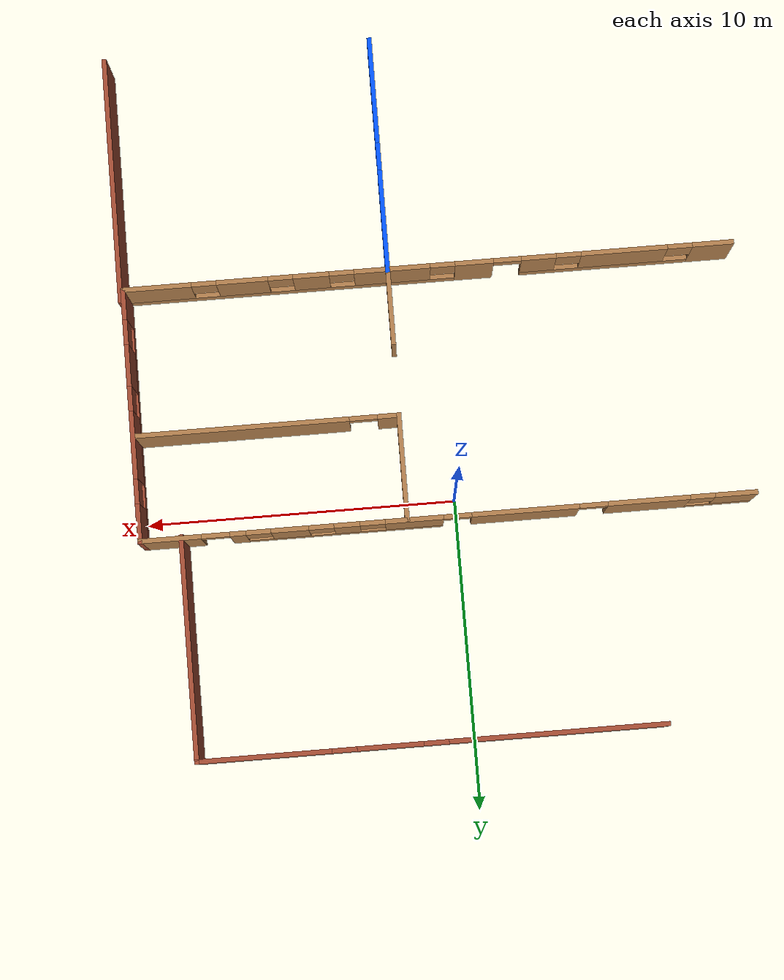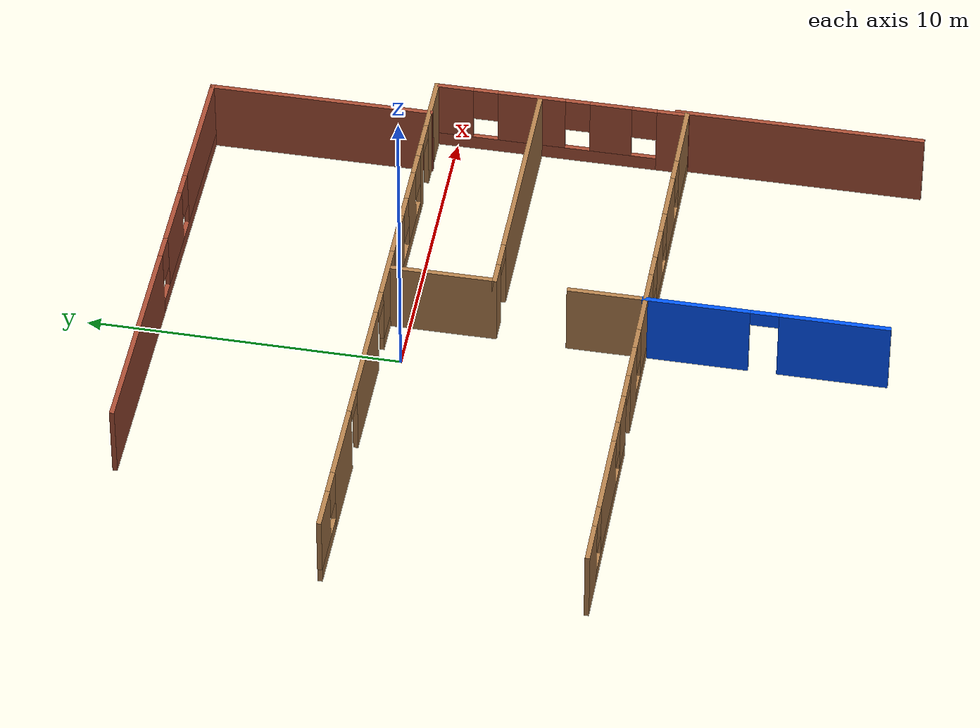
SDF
<sdf version="1.6">
 <model name="Building">
  <pose>-2.11328 -3.59888 0 0 -0 0</pose>
  <link name="Wall_19">
   <collision name="Wall_19_Collision">
    <geometry><box><size>3.5 0.15 2.5</size></box></geometry>
    <pose>0 0 1.25 0 -0 0</pose>
   </collision>
   <visual name="Wall_19_Visual">
    <pose>0 0 1.25 0 -0 0</pose>
    <geometry><box><size>3.5 0.15 2.5</size></box></geometry>
    <material>
     <script><uri>file://media/materials/scripts/gazebo.material</uri><name>Gazebo/Wood</name></script>
     <ambient>1 1 1 1</ambient>
    </material>
    <meta><layer>0</layer></meta>
   </visual>
   <pose>3.70447 2.60682 0 0 0 -1.5708</pose>
  </link>
  <link name="Wall_20">
   <pose>7.87947 0.931819 0 0 -0 0</pose>
   <visual name="Wall_20_Visual_0">
    <pose>-3.86745 0 1.25 0 -0 0</pose>
    <geometry><box><size>0.765092 0.15 2.5</size></box></geometry>
    <material>
     <script><uri>file://media/materials/scripts/gazebo.material</uri><name>Gazebo/Wood</name></script>
     <ambient>1 1 1 1</ambient>
    </material>
    <meta><layer>0</layer></meta>
   </visual>
   <collision name="Wall_20_Collision_0">
    <geometry><box><size>0.765092 0.15 2.5</size></box></geometry>
    <pose>-3.86745 0 1.25 0 -0 0</pose>
   </collision>
   <visual name="Wall_20_Visual_1">
    <pose>0.832546 0 1.25 0 -0 0</pose>
    <geometry><box><size>6.83491 0.15 2.5</size></box></geometry>
    <material>
     <script><uri>file://media/materials/scripts/gazebo.material</uri><name>Gazebo/Wood</name></script>
     <ambient>1 1 1 1</ambient>
    </material>
    <meta><layer>0</layer></meta>
   </visual>
   <collision name="Wall_20_Collision_1">
    <geometry><box><size>6.83491 0.15 2.5</size></box></geometry>
    <pose>0.832546 0 1.25 0 -0 0</pose>
   </collision>
   <visual name="Wall_20_Visual_2">
    <pose>-3.03491 0 2.25 0 -0 0</pose>
    <geometry><box><size>0.9 0.15 0.5</size></box></geometry>
    <material>
     <script><uri>file://media/materials/scripts/gazebo.material</uri><name>Gazebo/Wood</name></script>
     <ambient>1 1 1 1</ambient>
    </material>
    <meta><layer>0</layer></meta>
   </visual>
   <collision name="Wall_20_Collision_2">
    <geometry><box><size>0.9 0.15 0.5</size></box></geometry>
    <pose>-3.03491 0 2.25 0 -0 0</pose>
   </collision>
  </link>
  <link name="Wall_22">
   <collision name="Wall_22_Collision">
    <geometry><box><size>2.5 0.15 2.5</size></box></geometry>
    <pose>0 0 1.25 0 -0 0</pose>
   </collision>
   <visual name="Wall_22_Visual">
    <pose>0 0 1.25 0 -0 0</pose>
    <geometry><box><size>2.5 0.15 2.5</size></box></geometry>
    <material>
     <script><uri>file://media/materials/scripts/gazebo.material</uri><name>Gazebo/Wood</name></script>
     <ambient>1 1 1 1</ambient>
    </material>
    <meta><layer>0</layer></meta>
   </visual>
   <pose>3.68886 -2.58973 0 0 -0 1.5708</pose>
  </link>
  <link name="Wall_25">
   <pose>3.475 11.3647 0 0 -0 0</pose>
   <visual name="Wall_25_Visual_0">
    <pose>-4.00983 0 1.25 0 -0 0</pose>
    <geometry><box><size>6.98034 0.15 2.5</size></box></geometry>
    <material>
     <script><uri>file://media/materials/scripts/gazebo.material</uri><name>Gazebo/Bricks</name></script>
     <ambient>0 0.333333 1 1</ambient>
    </material>
    <meta><layer>0</layer></meta>
   </visual>
   <collision name="Wall_25_Collision_0">
    <geometry><box><size>6.98034 0.15 2.5</size></box></geometry>
    <pose>-4.00983 0 1.25 0 -0 0</pose>
   </collision>
   <visual name="Wall_25_Visual_1">
    <pose>3.49017 0 0.25 0 -0 0</pose>
    <geometry><box><size>8.01966 0.15 0.5</size></box></geometry>
    <material>
     <script><uri>file://media/materials/scripts/gazebo.material</uri><name>Gazebo/Bricks</name></script>
     <ambient>0 0.333333 1 1</ambient>
    </material>
    <meta><layer>0</layer></meta>
   </visual>
   <collision name="Wall_25_Collision_1">
    <geometry><box><size>8.01966 0.15 0.5</size></box></geometry>
    <pose>3.49017 0 0.25 0 -0 0</pose>
   </collision>
   <visual name="Wall_25_Visual_2">
    <pose>1.32873 0 1.5 0 -0 0</pose>
    <geometry><box><size>2.09676 0.15 2</size></box></geometry>
    <material>
     <script><uri>file://media/materials/scripts/gazebo.material</uri><name>Gazebo/Bricks</name></script>
     <ambient>0 0.333333 1 1</ambient>
    </material>
    <meta><layer>0</layer></meta>
   </visual>
   <collision name="Wall_25_Collision_2">
    <geometry><box><size>2.09676 0.15 2</size></box></geometry>
    <pose>1.32873 0 1.5 0 -0 0</pose>
   </collision>
   <visual name="Wall_25_Visual_3">
    <pose>5.33856 0 1.5 0 -0 0</pose>
    <geometry><box><size>4.32289 0.15 2</size></box></geometry>
    <material>
     <script><uri>file://media/materials/scripts/gazebo.material</uri><name>Gazebo/Bricks</name></script>
     <ambient>0 0.333333 1 1</ambient>
    </material>
    <meta><layer>0</layer></meta>
   </visual>
   <collision name="Wall_25_Collision_3">
    <geometry><box><size>4.32289 0.15 2</size></box></geometry>
    <pose>5.33856 0 1.5 0 -0 0</pose>
   </collision>
   <visual name="Wall_25_Visual_4">
    <pose>-0.119655 0 1.9 0 -0 0</pose>
    <geometry><box><size>0.8 0.15 1.2</size></box></geometry>
    <material>
     <script><uri>file://media/materials/scripts/gazebo.material</uri><name>Gazebo/Bricks</name></script>
     <ambient>0 0.333333 1 1</ambient>
    </material>
    <meta><layer>0</layer></meta>
   </visual>
   <collision name="Wall_25_Collision_4">
    <geometry><box><size>0.8 0.15 1.2</size></box></geometry>
    <pose>-0.119655 0 1.9 0 -0 0</pose>
   </collision>
   <visual name="Wall_25_Visual_5">
    <pose>2.77711 0 1.9 0 -0 0</pose>
    <geometry><box><size>0.8 0.15 1.2</size></box></geometry>
    <material>
     <script><uri>file://media/materials/scripts/gazebo.material</uri><name>Gazebo/Bricks</name></script>
     <ambient>0 0.333333 1 1</ambient>
    </material>
    <meta><layer>0</layer></meta>
   </visual>
   <collision name="Wall_25_Collision_5">
    <geometry><box><size>0.8 0.15 1.2</size></box></geometry>
    <pose>2.77711 0 1.9 0 -0 0</pose>
   </collision>
  </link>
  <link name="Wall_30">
   <collision name="Wall_30_Collision">
    <geometry><box><size>7.25 0.15 2.5</size></box></geometry>
    <pose>0 0 1.25 0 -0 0</pose>
   </collision>
   <visual name="Wall_30_Visual">
    <pose>0 0 1.25 0 -0 0</pose>
    <geometry><box><size>7.25 0.15 2.5</size></box></geometry>
    <material>
     <script><uri>file://media/materials/scripts/gazebo.material</uri><name>Gazebo/Bricks</name></script>
     <ambient>0 0.333333 1 1</ambient>
    </material>
    <meta><layer>0</layer></meta>
   </visual>
   <pose>10.9 7.81472 0 0 0 -1.5708</pose>
  </link>
  <link name="Wall_43">
   <collision name="Wall_43_Collision">
    <geometry><box><size>8 0.15 2.5</size></box></geometry>
    <pose>0 0 1.25 0 -0 0</pose>
   </collision>
   <visual name="Wall_43_Visual">
    <pose>0 0 1.25 0 -0 0</pose>
    <geometry><box><size>8 0.15 2.5</size></box></geometry>
    <material>
     <script><uri>file://media/materials/scripts/gazebo.material</uri><name>Gazebo/Bricks</name></script>
     <ambient>0 0.333333 1 1</ambient>
    </material>
    <meta><layer>0</layer></meta>
   </visual>
   <pose>12.3 -7.41028 0 0 -0 1.5708</pose>
  </link>
  <link name="Wall_49">
   <pose>3.68886 -7.56473 0 0 0 -1.5708</pose>
   <visual name="Wall_49_Visual_0">
    <pose>-2.18717 0 1.25 0 -0 0</pose>
    <geometry><box><size>3.37566 0.15 2.5</size></box></geometry>
    <material>
     <script><uri>file://media/materials/scripts/gazebo.material</uri><name>Gazebo/Grey</name></script>
     <ambient>0 0.333333 1 1</ambient>
    </material>
    <meta><layer>0</layer></meta>
   </visual>
   <collision name="Wall_49_Collision_0">
    <geometry><box><size>3.37566 0.15 2.5</size></box></geometry>
    <pose>-2.18717 0 1.25 0 -0 0</pose>
   </collision>
   <visual name="Wall_49_Visual_1">
    <pose>2.13783 0 1.25 0 -0 0</pose>
    <geometry><box><size>3.47434 0.15 2.5</size></box></geometry>
    <material>
     <script><uri>file://media/materials/scripts/gazebo.material</uri><name>Gazebo/Grey</name></script>
     <ambient>0 0.333333 1 1</ambient>
    </material>
    <meta><layer>0</layer></meta>
   </visual>
   <collision name="Wall_49_Collision_1">
    <geometry><box><size>3.47434 0.15 2.5</size></box></geometry>
    <pose>2.13783 0 1.25 0 -0 0</pose>
   </collision>
   <visual name="Wall_49_Visual_2">
    <pose>-0.049336 0 2.25 0 -0 0</pose>
    <geometry><box><size>0.9 0.15 0.5</size></box></geometry>
    <material>
     <script><uri>file://media/materials/scripts/gazebo.material</uri><name>Gazebo/Grey</name></script>
     <ambient>0 0.333333 1 1</ambient>
    </material>
    <meta><layer>0</layer></meta>
   </visual>
   <collision name="Wall_49_Collision_2">
    <geometry><box><size>0.9 0.15 0.5</size></box></geometry>
    <pose>-0.049336 0 2.25 0 -0 0</pose>
   </collision>
  </link>
  <link name="Wall_5">
   <pose>2.40547 -3.80095 0 0 -0 0</pose>
   <visual name="Wall_5_Visual_0">
    <pose>-9.20403 0 1.25 0 -0 0</pose>
    <geometry><box><size>1.34195 0.15 2.5</size></box></geometry>
    <material>
     <script><uri>file://media/materials/scripts/gazebo.material</uri><name>Gazebo/Wood</name></script>
     <ambient>1 1 1 1</ambient>
    </material>
    <meta><layer>0</layer></meta>
   </visual>
   <collision name="Wall_5_Collision_0">
    <geometry><box><size>1.34195 0.15 2.5</size></box></geometry>
    <pose>-9.20403 0 1.25 0 -0 0</pose>
   </collision>
   <visual name="Wall_5_Visual_1">
    <pose>-1.50114 0 1.25 0 -0 0</pose>
    <geometry><box><size>1.23531 0.15 2.5</size></box></geometry>
    <material>
     <script><uri>file://media/materials/scripts/gazebo.material</uri><name>Gazebo/Wood</name></script>
     <ambient>1 1 1 1</ambient>
    </material>
    <meta><layer>0</layer></meta>
   </visual>
   <collision name="Wall_5_Collision_1">
    <geometry><box><size>1.23531 0.15 2.5</size></box></geometry>
    <pose>-1.50114 0 1.25 0 -0 0</pose>
   </collision>
   <visual name="Wall_5_Visual_2">
    <pose>-5.77592 0 0.25 0 -0 0</pose>
    <geometry><box><size>5.51426 0.15 0.5</size></box></geometry>
    <material>
     <script><uri>file://media/materials/scripts/gazebo.material</uri><name>Gazebo/Wood</name></script>
     <ambient>1 1 1 1</ambient>
    </material>
    <meta><layer>0</layer></meta>
   </visual>
   <collision name="Wall_5_Collision_2">
    <geometry><box><size>5.51426 0.15 0.5</size></box></geometry>
    <pose>-5.77592 0 0.25 0 -0 0</pose>
   </collision>
   <visual name="Wall_5_Visual_3">
    <pose>4.49576 0 0.25 0 -0 0</pose>
    <geometry><box><size>10.7585 0.15 0.5</size></box></geometry>
    <material>
     <script><uri>file://media/materials/scripts/gazebo.material</uri><name>Gazebo/Wood</name></script>
     <ambient>1 1 1 1</ambient>
    </material>
    <meta><layer>0</layer></meta>
   </visual>
   <collision name="Wall_5_Collision_3">
    <geometry><box><size>10.7585 0.15 0.5</size></box></geometry>
    <pose>4.49576 0 0.25 0 -0 0</pose>
   </collision>
   <visual name="Wall_5_Visual_4">
    <pose>-6.33869 0 1.5 0 -0 0</pose>
    <geometry><box><size>2.78873 0.15 2</size></box></geometry>
    <material>
     <script><uri>file://media/materials/scripts/gazebo.material</uri><name>Gazebo/Wood</name></script>
     <ambient>1 1 1 1</ambient>
    </material>
    <meta><layer>0</layer></meta>
   </visual>
   <collision name="Wall_5_Collision_4">
    <geometry><box><size>2.78873 0.15 2</size></box></geometry>
    <pose>-6.33869 0 1.5 0 -0 0</pose>
   </collision>
   <visual name="Wall_5_Visual_5">
    <pose>-3.58156 0 1.5 0 -0 0</pose>
    <geometry><box><size>1.12553 0.15 2</size></box></geometry>
    <material>
     <script><uri>file://media/materials/scripts/gazebo.material</uri><name>Gazebo/Wood</name></script>
     <ambient>1 1 1 1</ambient>
    </material>
    <meta><layer>0</layer></meta>
   </visual>
   <collision name="Wall_5_Collision_5">
    <geometry><box><size>1.12553 0.15 2</size></box></geometry>
    <pose>-3.58156 0 1.5 0 -0 0</pose>
   </collision>
   <visual name="Wall_5_Visual_6">
    <pose>-3.58156 0 1.5 0 -0 0</pose>
    <geometry><box><size>1.12553 0.15 2</size></box></geometry>
    <material>
     <script><uri>file://media/materials/scripts/gazebo.material</uri><name>Gazebo/Wood</name></script>
     <ambient>1 1 1 1</ambient>
    </material>
    <meta><layer>0</layer></meta>
   </visual>
   <collision name="Wall_5_Collision_6">
    <geometry><box><size>1.12553 0.15 2</size></box></geometry>
    <pose>-3.58156 0 1.5 0 -0 0</pose>
   </collision>
   <visual name="Wall_5_Visual_7">
    <pose>1.14701 0 1.5 0 -0 0</pose>
    <geometry><box><size>2.46098 0.15 2</size></box></geometry>
    <material>
     <script><uri>file://media/materials/scripts/gazebo.material</uri><name>Gazebo/Wood</name></script>
     <ambient>1 1 1 1</ambient>
    </material>
    <meta><layer>0</layer></meta>
   </visual>
   <collision name="Wall_5_Collision_7">
    <geometry><box><size>2.46098 0.15 2</size></box></geometry>
    <pose>1.14701 0 1.5 0 -0 0</pose>
   </collision>
   <visual name="Wall_5_Visual_8">
    <pose>3.76194 0 1.5 0 -0 0</pose>
    <geometry><box><size>1.16889 0.15 2</size></box></geometry>
    <material>
     <script><uri>file://media/materials/scripts/gazebo.material</uri><name>Gazebo/Wood</name></script>
     <ambient>1 1 1 1</ambient>
    </material>
    <meta><layer>0</layer></meta>
   </visual>
   <collision name="Wall_5_Collision_8">
    <geometry><box><size>1.16889 0.15 2</size></box></geometry>
    <pose>3.76194 0 1.5 0 -0 0</pose>
   </collision>
   <visual name="Wall_5_Visual_9">
    <pose>5.97694 0 1.5 0 -0 0</pose>
    <geometry><box><size>1.66111 0.15 2</size></box></geometry>
    <material>
     <script><uri>file://media/materials/scripts/gazebo.material</uri><name>Gazebo/Wood</name></script>
     <ambient>1 1 1 1</ambient>
    </material>
    <meta><layer>0</layer></meta>
   </visual>
   <collision name="Wall_5_Collision_9">
    <geometry><box><size>1.66111 0.15 2</size></box></geometry>
    <pose>5.97694 0 1.5 0 -0 0</pose>
   </collision>
   <visual name="Wall_5_Visual_10">
    <pose>8.74125 0 1.5 0 -0 0</pose>
    <geometry><box><size>2.2675 0.15 2</size></box></geometry>
    <material>
     <script><uri>file://media/materials/scripts/gazebo.material</uri><name>Gazebo/Wood</name></script>
     <ambient>1 1 1 1</ambient>
    </material>
    <meta><layer>0</layer></meta>
   </visual>
   <collision name="Wall_5_Collision_10">
    <geometry><box><size>2.2675 0.15 2</size></box></geometry>
    <pose>8.74125 0 1.5 0 -0 0</pose>
   </collision>
   <visual name="Wall_5_Visual_11">
    <pose>-8.13305 0 1.9 0 -0 0</pose>
    <geometry><box><size>0.8 0.15 1.2</size></box></geometry>
    <material>
     <script><uri>file://media/materials/scripts/gazebo.material</uri><name>Gazebo/Wood</name></script>
     <ambient>1 1 1 1</ambient>
    </material>
    <meta><layer>0</layer></meta>
   </visual>
   <collision name="Wall_5_Collision_11">
    <geometry><box><size>0.8 0.15 1.2</size></box></geometry>
    <pose>-8.13305 0 1.9 0 -0 0</pose>
   </collision>
   <visual name="Wall_5_Visual_12">
    <pose>-0.483483 0 1.9 0 -0 0</pose>
    <geometry><box><size>0.8 0.15 1.2</size></box></geometry>
    <material>
     <script><uri>file://media/materials/scripts/gazebo.material</uri><name>Gazebo/Wood</name></script>
     <ambient>1 1 1 1</ambient>
    </material>
    <meta><layer>0</layer></meta>
   </visual>
   <collision name="Wall_5_Collision_12">
    <geometry><box><size>0.8 0.15 1.2</size></box></geometry>
    <pose>-0.483483 0 1.9 0 -0 0</pose>
   </collision>
   <visual name="Wall_5_Visual_13">
    <pose>-4.54432 0 1.9 0 -0 0</pose>
    <geometry><box><size>0.8 0.15 1.2</size></box></geometry>
    <material>
     <script><uri>file://media/materials/scripts/gazebo.material</uri><name>Gazebo/Wood</name></script>
     <ambient>1 1 1 1</ambient>
    </material>
    <meta><layer>0</layer></meta>
   </visual>
   <collision name="Wall_5_Collision_13">
    <geometry><box><size>0.8 0.15 1.2</size></box></geometry>
    <pose>-4.54432 0 1.9 0 -0 0</pose>
   </collision>
   <visual name="Wall_5_Visual_14">
    <pose>2.7775 0 1.9 0 -0 0</pose>
    <geometry><box><size>0.8 0.15 1.2</size></box></geometry>
    <material>
     <script><uri>file://media/materials/scripts/gazebo.material</uri><name>Gazebo/Wood</name></script>
     <ambient>1 1 1 1</ambient>
    </material>
    <meta><layer>0</layer></meta>
   </visual>
   <collision name="Wall_5_Collision_14">
    <geometry><box><size>0.8 0.15 1.2</size></box></geometry>
    <pose>2.7775 0 1.9 0 -0 0</pose>
   </collision>
   <visual name="Wall_5_Visual_15">
    <pose>4.74639 0 1.9 0 -0 0</pose>
    <geometry><box><size>0.8 0.15 1.2</size></box></geometry>
    <material>
     <script><uri>file://media/materials/scripts/gazebo.material</uri><name>Gazebo/Wood</name></script>
     <ambient>1 1 1 1</ambient>
    </material>
    <meta><layer>0</layer></meta>
   </visual>
   <collision name="Wall_5_Collision_15">
    <geometry><box><size>0.8 0.15 1.2</size></box></geometry>
    <pose>4.74639 0 1.9 0 -0 0</pose>
   </collision>
   <visual name="Wall_5_Visual_16">
    <pose>7.2075 0 1.9 0 -0 0</pose>
    <geometry><box><size>0.8 0.15 1.2</size></box></geometry>
    <material>
     <script><uri>file://media/materials/scripts/gazebo.material</uri><name>Gazebo/Wood</name></script>
     <ambient>1 1 1 1</ambient>
    </material>
    <meta><layer>0</layer></meta>
   </visual>
   <collision name="Wall_5_Collision_16">
    <geometry><box><size>0.8 0.15 1.2</size></box></geometry>
    <pose>7.2075 0 1.9 0 -0 0</pose>
   </collision>
   <visual name="Wall_5_Visual_17">
    <pose>-2.56879 0 2.25 0 -0 0</pose>
    <geometry><box><size>0.9 0.15 0.5</size></box></geometry>
    <material>
     <script><uri>file://media/materials/scripts/gazebo.material</uri><name>Gazebo/Wood</name></script>
     <ambient>1 1 1 1</ambient>
    </material>
    <meta><layer>0</layer></meta>
   </visual>
   <collision name="Wall_5_Collision_17">
    <geometry><box><size>0.9 0.15 0.5</size></box></geometry>
    <pose>-2.56879 0 2.25 0 -0 0</pose>
   </collision>
   <visual name="Wall_5_Visual_18">
    <pose>-2.56879 0 2.25 0 -0 0</pose>
    <geometry><box><size>0.9 0.15 0.5</size></box></geometry>
    <material>
     <script><uri>file://media/materials/scripts/gazebo.material</uri><name>Gazebo/Wood</name></script>
     <ambient>1 1 1 1</ambient>
    </material>
    <meta><layer>0</layer></meta>
   </visual>
   <collision name="Wall_5_Collision_18">
    <geometry><box><size>0.9 0.15 0.5</size></box></geometry>
    <pose>-2.56879 0 2.25 0 -0 0</pose>
   </collision>
  </link>
  <link name="Wall_6">
   <pose>12.2055 0.24905 0 0 -0 1.5708</pose>
   <visual name="Wall_6_Visual_0">
    <pose>-3.60603 0 1.25 0 -0 0</pose>
    <geometry><box><size>1.03795 0.15 2.5</size></box></geometry>
    <material>
     <script><uri>file://media/materials/scripts/gazebo.material</uri><name>Gazebo/Bricks</name></script>
     <ambient>0 0.333333 1 1</ambient>
    </material>
    <meta><layer>0</layer></meta>
   </visual>
   <collision name="Wall_6_Collision_0">
    <geometry><box><size>1.03795 0.15 2.5</size></box></geometry>
    <pose>-3.60603 0 1.25 0 -0 0</pose>
   </collision>
   <visual name="Wall_6_Visual_1">
    <pose>0.518974 0 0.25 0 -0 0</pose>
    <geometry><box><size>7.21205 0.15 0.5</size></box></geometry>
    <material>
     <script><uri>file://media/materials/scripts/gazebo.material</uri><name>Gazebo/Bricks</name></script>
     <ambient>0 0.333333 1 1</ambient>
    </material>
    <meta><layer>0</layer></meta>
   </visual>
   <collision name="Wall_6_Collision_1">
    <geometry><box><size>7.21205 0.15 0.5</size></box></geometry>
    <pose>0.518974 0 0.25 0 -0 0</pose>
   </collision>
   <visual name="Wall_6_Visual_2">
    <pose>-1.61031 0 1.5 0 -0 0</pose>
    <geometry><box><size>1.35348 0.15 2</size></box></geometry>
    <material>
     <script><uri>file://media/materials/scripts/gazebo.material</uri><name>Gazebo/Bricks</name></script>
     <ambient>0 0.333333 1 1</ambient>
    </material>
    <meta><layer>0</layer></meta>
   </visual>
   <collision name="Wall_6_Collision_2">
    <geometry><box><size>1.35348 0.15 2</size></box></geometry>
    <pose>-1.61031 0 1.5 0 -0 0</pose>
   </collision>
   <visual name="Wall_6_Visual_3">
    <pose>0.958474 0 1.5 0 -0 0</pose>
    <geometry><box><size>2.1841 0.15 2</size></box></geometry>
    <material>
     <script><uri>file://media/materials/scripts/gazebo.material</uri><name>Gazebo/Bricks</name></script>
     <ambient>0 0.333333 1 1</ambient>
    </material>
    <meta><layer>0</layer></meta>
   </visual>
   <collision name="Wall_6_Collision_3">
    <geometry><box><size>2.1841 0.15 2</size></box></geometry>
    <pose>0.958474 0 1.5 0 -0 0</pose>
   </collision>
   <visual name="Wall_6_Visual_4">
    <pose>3.48776 0 1.5 0 -0 0</pose>
    <geometry><box><size>1.27448 0.15 2</size></box></geometry>
    <material>
     <script><uri>file://media/materials/scripts/gazebo.material</uri><name>Gazebo/Bricks</name></script>
     <ambient>0 0.333333 1 1</ambient>
    </material>
    <meta><layer>0</layer></meta>
   </visual>
   <collision name="Wall_6_Collision_4">
    <geometry><box><size>1.27448 0.15 2</size></box></geometry>
    <pose>3.48776 0 1.5 0 -0 0</pose>
   </collision>
   <visual name="Wall_6_Visual_5">
    <pose>-2.68705 0 1.9 0 -0 0</pose>
    <geometry><box><size>0.8 0.15 1.2</size></box></geometry>
    <material>
     <script><uri>file://media/materials/scripts/gazebo.material</uri><name>Gazebo/Bricks</name></script>
     <ambient>0 0.333333 1 1</ambient>
    </material>
    <meta><layer>0</layer></meta>
   </visual>
   <collision name="Wall_6_Collision_5">
    <geometry><box><size>0.8 0.15 1.2</size></box></geometry>
    <pose>-2.68705 0 1.9 0 -0 0</pose>
   </collision>
   <visual name="Wall_6_Visual_6">
    <pose>-0.533577 0 1.9 0 -0 0</pose>
    <geometry><box><size>0.8 0.15 1.2</size></box></geometry>
    <material>
     <script><uri>file://media/materials/scripts/gazebo.material</uri><name>Gazebo/Bricks</name></script>
     <ambient>0 0.333333 1 1</ambient>
    </material>
    <meta><layer>0</layer></meta>
   </visual>
   <collision name="Wall_6_Collision_6">
    <geometry><box><size>0.8 0.15 1.2</size></box></geometry>
    <pose>-0.533577 0 1.9 0 -0 0</pose>
   </collision>
   <visual name="Wall_6_Visual_7">
    <pose>2.45052 0 1.9 0 -0 0</pose>
    <geometry><box><size>0.8 0.15 1.2</size></box></geometry>
    <material>
     <script><uri>file://media/materials/scripts/gazebo.material</uri><name>Gazebo/Bricks</name></script>
     <ambient>0 0.333333 1 1</ambient>
    </material>
    <meta><layer>0</layer></meta>
   </visual>
   <collision name="Wall_6_Collision_7">
    <geometry><box><size>0.8 0.15 1.2</size></box></geometry>
    <pose>2.45052 0 1.9 0 -0 0</pose>
   </collision>
  </link>
  <link name="Wall_7">
   <pose>2.40547 4.29905 0 0 -0 3.14159</pose>
   <visual name="Wall_7_Visual_0">
    <pose>-8.86526 0 1.25 0 -0 0</pose>
    <geometry><box><size>2.01947 0.15 2.5</size></box></geometry>
    <material>
     <script><uri>file://media/materials/scripts/gazebo.material</uri><name>Gazebo/Wood</name></script>
     <ambient>1 1 1 1</ambient>
    </material>
    <meta><layer>0</layer></meta>
   </visual>
   <collision name="Wall_7_Collision_0">
    <geometry><box><size>2.01947 0.15 2.5</size></box></geometry>
    <pose>-8.86526 0 1.25 0 -0 0</pose>
   </collision>
   <visual name="Wall_7_Visual_1">
    <pose>-6.697 0 1.25 0 -0 0</pose>
    <geometry><box><size>0.517053 0.15 2.5</size></box></geometry>
    <material>
     <script><uri>file://media/materials/scripts/gazebo.material</uri><name>Gazebo/Wood</name></script>
     <ambient>1 1 1 1</ambient>
    </material>
    <meta><layer>0</layer></meta>
   </visual>
   <collision name="Wall_7_Collision_1">
    <geometry><box><size>0.517053 0.15 2.5</size></box></geometry>
    <pose>-6.697 0 1.25 0 -0 0</pose>
   </collision>
   <visual name="Wall_7_Visual_2">
    <pose>2.47082 0 1.25 0 -0 0</pose>
    <geometry><box><size>3.43771 0.15 2.5</size></box></geometry>
    <material>
     <script><uri>file://media/materials/scripts/gazebo.material</uri><name>Gazebo/Wood</name></script>
     <ambient>1 1 1 1</ambient>
    </material>
    <meta><layer>0</layer></meta>
   </visual>
   <collision name="Wall_7_Collision_2">
    <geometry><box><size>3.43771 0.15 2.5</size></box></geometry>
    <pose>2.47082 0 1.25 0 -0 0</pose>
   </collision>
   <visual name="Wall_7_Visual_3">
    <pose>6.40131 0 1.25 0 -0 0</pose>
    <geometry><box><size>2.62326 0.15 2.5</size></box></geometry>
    <material>
     <script><uri>file://media/materials/scripts/gazebo.material</uri><name>Gazebo/Wood</name></script>
     <ambient>1 1 1 1</ambient>
    </material>
    <meta><layer>0</layer></meta>
   </visual>
   <collision name="Wall_7_Collision_3">
    <geometry><box><size>2.62326 0.15 2.5</size></box></geometry>
    <pose>6.40131 0 1.25 0 -0 0</pose>
   </collision>
   <visual name="Wall_7_Visual_4">
    <pose>-3.29325 0 0.25 0 -0 0</pose>
    <geometry><box><size>6.29044 0.15 0.5</size></box></geometry>
    <material>
     <script><uri>file://media/materials/scripts/gazebo.material</uri><name>Gazebo/Wood</name></script>
     <ambient>1 1 1 1</ambient>
    </material>
    <meta><layer>0</layer></meta>
   </visual>
   <collision name="Wall_7_Collision_4">
    <geometry><box><size>6.29044 0.15 0.5</size></box></geometry>
    <pose>-3.29325 0 0.25 0 -0 0</pose>
   </collision>
   <visual name="Wall_7_Visual_5">
    <pose>8.79397 0 0.25 0 -0 0</pose>
    <geometry><box><size>2.16206 0.15 0.5</size></box></geometry>
    <material>
     <script><uri>file://media/materials/scripts/gazebo.material</uri><name>Gazebo/Wood</name></script>
     <ambient>1 1 1 1</ambient>
    </material>
    <meta><layer>0</layer></meta>
   </visual>
   <collision name="Wall_7_Collision_5">
    <geometry><box><size>2.16206 0.15 0.5</size></box></geometry>
    <pose>8.79397 0 0.25 0 -0 0</pose>
   </collision>
   <visual name="Wall_7_Visual_6">
    <pose>-5.03864 0 1.5 0 -0 0</pose>
    <geometry><box><size>1.19966 0.15 2</size></box></geometry>
    <material>
     <script><uri>file://media/materials/scripts/gazebo.material</uri><name>Gazebo/Wood</name></script>
     <ambient>1 1 1 1</ambient>
    </material>
    <meta><layer>0</layer></meta>
   </visual>
   <collision name="Wall_7_Collision_6">
    <geometry><box><size>1.19966 0.15 2</size></box></geometry>
    <pose>-5.03864 0 1.5 0 -0 0</pose>
   </collision>
   <visual name="Wall_7_Visual_7">
    <pose>-3.22357 0 1.5 0 -0 0</pose>
    <geometry><box><size>0.830489 0.15 2</size></box></geometry>
    <material>
     <script><uri>file://media/materials/scripts/gazebo.material</uri><name>Gazebo/Wood</name></script>
     <ambient>1 1 1 1</ambient>
    </material>
    <meta><layer>0</layer></meta>
   </visual>
   <collision name="Wall_7_Collision_7">
    <geometry><box><size>0.830489 0.15 2</size></box></geometry>
    <pose>-3.22357 0 1.5 0 -0 0</pose>
   </collision>
   <visual name="Wall_7_Visual_8">
    <pose>-1.07818 0 1.5 0 -0 0</pose>
    <geometry><box><size>1.86029 0.15 2</size></box></geometry>
    <material>
     <script><uri>file://media/materials/scripts/gazebo.material</uri><name>Gazebo/Wood</name></script>
     <ambient>1 1 1 1</ambient>
    </material>
    <meta><layer>0</layer></meta>
   </visual>
   <collision name="Wall_7_Collision_8">
    <geometry><box><size>1.86029 0.15 2</size></box></geometry>
    <pose>-1.07818 0 1.5 0 -0 0</pose>
   </collision>
   <visual name="Wall_7_Visual_9">
    <pose>-1.07818 0 1.5 0 -0 0</pose>
    <geometry><box><size>1.86029 0.15 2</size></box></geometry>
    <material>
     <script><uri>file://media/materials/scripts/gazebo.material</uri><name>Gazebo/Wood</name></script>
     <ambient>1 1 1 1</ambient>
    </material>
    <meta><layer>0</layer></meta>
   </visual>
   <collision name="Wall_7_Collision_9">
    <geometry><box><size>1.86029 0.15 2</size></box></geometry>
    <pose>-1.07818 0 1.5 0 -0 0</pose>
   </collision>
   <visual name="Wall_7_Visual_10">
    <pose>9.19397 0 1.5 0 -0 0</pose>
    <geometry><box><size>1.36206 0.15 2</size></box></geometry>
    <material>
     <script><uri>file://media/materials/scripts/gazebo.material</uri><name>Gazebo/Wood</name></script>
     <ambient>1 1 1 1</ambient>
    </material>
    <meta><layer>0</layer></meta>
   </visual>
   <collision name="Wall_7_Collision_10">
    <geometry><box><size>1.36206 0.15 2</size></box></geometry>
    <pose>9.19397 0 1.5 0 -0 0</pose>
   </collision>
   <visual name="Wall_7_Visual_11">
    <pose>-6.03847 0 1.9 0 -0 0</pose>
    <geometry><box><size>0.8 0.15 1.2</size></box></geometry>
    <material>
     <script><uri>file://media/materials/scripts/gazebo.material</uri><name>Gazebo/Wood</name></script>
     <ambient>1 1 1 1</ambient>
    </material>
    <meta><layer>0</layer></meta>
   </visual>
   <collision name="Wall_7_Collision_11">
    <geometry><box><size>0.8 0.15 1.2</size></box></geometry>
    <pose>-6.03847 0 1.9 0 -0 0</pose>
   </collision>
   <visual name="Wall_7_Visual_12">
    <pose>8.11294 0 1.9 0 -0 0</pose>
    <geometry><box><size>0.8 0.15 1.2</size></box></geometry>
    <material>
     <script><uri>file://media/materials/scripts/gazebo.material</uri><name>Gazebo/Wood</name></script>
     <ambient>1 1 1 1</ambient>
    </material>
    <meta><layer>0</layer></meta>
   </visual>
   <collision name="Wall_7_Collision_12">
    <geometry><box><size>0.8 0.15 1.2</size></box></geometry>
    <pose>8.11294 0 1.9 0 -0 0</pose>
   </collision>
   <visual name="Wall_7_Visual_13">
    <pose>-4.03882 0 1.9 0 -0 0</pose>
    <geometry><box><size>0.8 0.15 1.2</size></box></geometry>
    <material>
     <script><uri>file://media/materials/scripts/gazebo.material</uri><name>Gazebo/Wood</name></script>
     <ambient>1 1 1 1</ambient>
    </material>
    <meta><layer>0</layer></meta>
   </visual>
   <collision name="Wall_7_Collision_13">
    <geometry><box><size>0.8 0.15 1.2</size></box></geometry>
    <pose>-4.03882 0 1.9 0 -0 0</pose>
   </collision>
   <visual name="Wall_7_Visual_14">
    <pose>-2.40833 0 1.9 0 -0 0</pose>
    <geometry><box><size>0.8 0.15 1.2</size></box></geometry>
    <material>
     <script><uri>file://media/materials/scripts/gazebo.material</uri><name>Gazebo/Wood</name></script>
     <ambient>1 1 1 1</ambient>
    </material>
    <meta><layer>0</layer></meta>
   </visual>
   <collision name="Wall_7_Collision_14">
    <geometry><box><size>0.8 0.15 1.2</size></box></geometry>
    <pose>-2.40833 0 1.9 0 -0 0</pose>
   </collision>
   <visual name="Wall_7_Visual_15">
    <pose>-7.40552 0 2.25 0 -0 0</pose>
    <geometry><box><size>0.9 0.15 0.5</size></box></geometry>
    <material>
     <script><uri>file://media/materials/scripts/gazebo.material</uri><name>Gazebo/Wood</name></script>
     <ambient>1 1 1 1</ambient>
    </material>
    <meta><layer>0</layer></meta>
   </visual>
   <collision name="Wall_7_Collision_15">
    <geometry><box><size>0.9 0.15 0.5</size></box></geometry>
    <pose>-7.40552 0 2.25 0 -0 0</pose>
   </collision>
   <visual name="Wall_7_Visual_16">
    <pose>4.63968 0 2.25 0 -0 0</pose>
    <geometry><box><size>0.9 0.15 0.5</size></box></geometry>
    <material>
     <script><uri>file://media/materials/scripts/gazebo.material</uri><name>Gazebo/Wood</name></script>
     <ambient>1 1 1 1</ambient>
    </material>
    <meta><layer>0</layer></meta>
   </visual>
   <collision name="Wall_7_Collision_16">
    <geometry><box><size>0.9 0.15 0.5</size></box></geometry>
    <pose>4.63968 0 2.25 0 -0 0</pose>
   </collision>
   <visual name="Wall_7_Visual_17">
    <pose>0.301964 0 2.25 0 -0 0</pose>
    <geometry><box><size>0.9 0.15 0.5</size></box></geometry>
    <material>
     <script><uri>file://media/materials/scripts/gazebo.material</uri><name>Gazebo/Wood</name></script>
     <ambient>1 1 1 1</ambient>
    </material>
    <meta><layer>0</layer></meta>
   </visual>
   <collision name="Wall_7_Collision_17">
    <geometry><box><size>0.9 0.15 0.5</size></box></geometry>
    <pose>0.301964 0 2.25 0 -0 0</pose>
   </collision>
   <visual name="Wall_7_Visual_18">
    <pose>0.301964 0 2.25 0 -0 0</pose>
    <geometry><box><size>0.9 0.15 0.5</size></box></geometry>
    <material>
     <script><uri>file://media/materials/scripts/gazebo.material</uri><name>Gazebo/Wood</name></script>
     <ambient>1 1 1 1</ambient>
    </material>
    <meta><layer>0</layer></meta>
   </visual>
   <collision name="Wall_7_Collision_18">
    <geometry><box><size>0.9 0.15 0.5</size></box></geometry>
    <pose>0.301964 0 2.25 0 -0 0</pose>
   </collision>
  </link>
  <static>1</static>
 </model>
</sdf>
